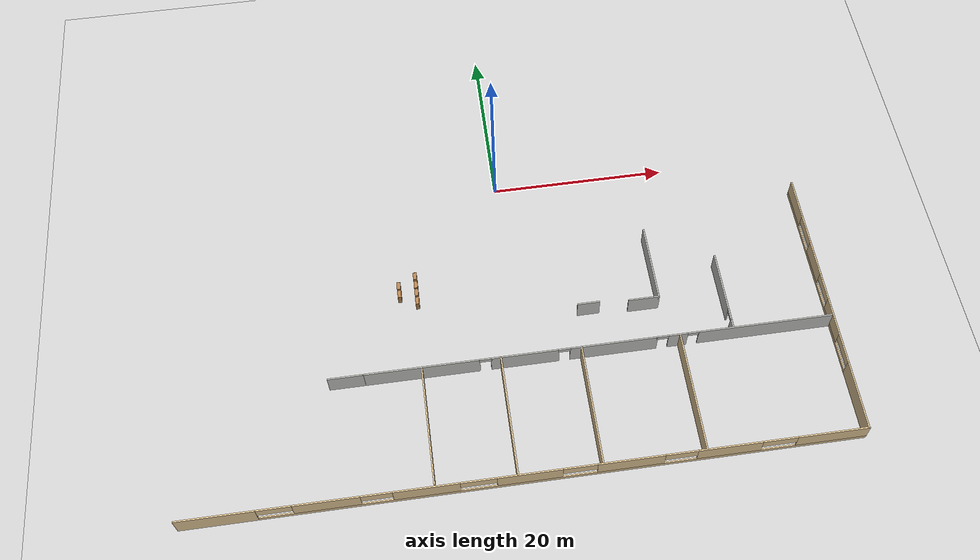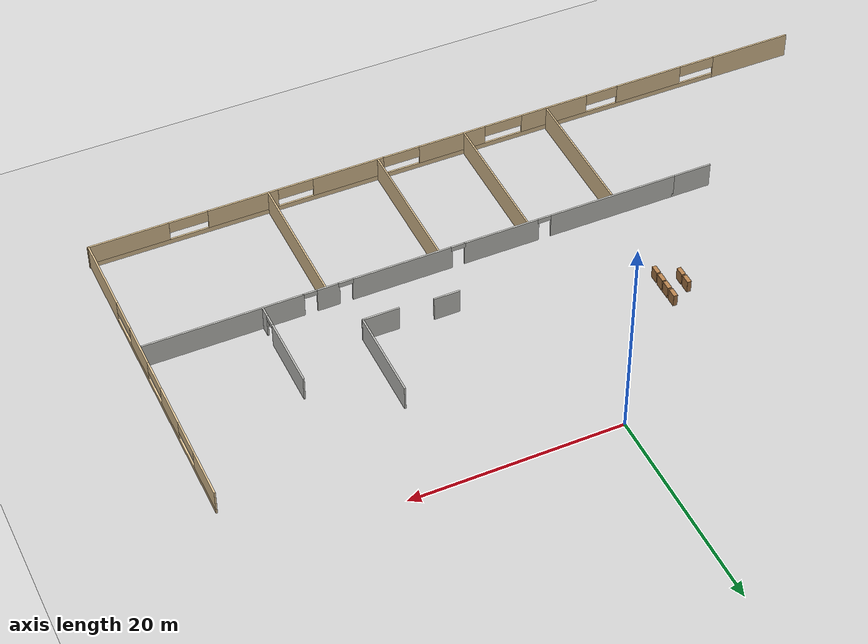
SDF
<sdf version="1.7">
 <world name="default">
  <model name="ground_plane">
   <static>1</static>
   <link name="link">
    <collision name="collision">
     <geometry><plane><normal>0 0 1</normal><size>100 100</size></plane></geometry>
     <surface>
      <contact><collide_bitmask>65535</collide_bitmask></contact>
      <friction><ode><mu>100</mu><mu2>50</mu2></ode></friction>
     </surface>
    </collision>
    <visual name="visual">
     <cast_shadows>0</cast_shadows>
     <geometry><plane><normal>0 0 1</normal><size>100 100</size></plane></geometry>
     <material>
      <script><uri>file://media/materials/scripts/gazebo.material</uri><name>Gazebo/Grey</name></script>
     </material>
    </visual>
   </link>
  </model>
  <model name="Building">
   <pose>0.746899 -1.50406 0 0 -0 1.57073</pose>
   <link name="Wall_10">
    <pose>-19.5795 -33.75 0 0 -0 0</pose>
    <visual name="Wall_10_Visual_0">
     <pose>-11.9192 0 1.25 0 -0 0</pose>
     <geometry><box><size>7.66158 0.15 2.5</size></box></geometry>
     <material>
      <script><uri>file://media/materials/scripts/gazebo.material</uri><name>Gazebo/Grey</name></script>
      <ambient>0.921569 0.807843 0.615686 1</ambient>
     </material>
     <meta><layer>0</layer></meta>
    </visual>
    <collision name="Wall_10_Collision_0">
     <geometry><box><size>7.66158 0.15 2.5</size></box></geometry>
     <pose>-11.9192 0 1.25 0 -0 0</pose>
    </collision>
    <visual name="Wall_10_Visual_1">
     <pose>3.83079 0 0.25 0 -0 0</pose>
     <geometry><box><size>23.8384 0.15 0.5</size></box></geometry>
     <material>
      <script><uri>file://media/materials/scripts/gazebo.material</uri><name>Gazebo/Grey</name></script>
      <ambient>0.921569 0.807843 0.615686 1</ambient>
     </material>
     <meta><layer>0</layer></meta>
    </visual>
    <collision name="Wall_10_Collision_1">
     <geometry><box><size>23.8384 0.15 0.5</size></box></geometry>
     <pose>3.83079 0 0.25 0 -0 0</pose>
    </collision>
    <visual name="Wall_10_Visual_2">
     <pose>-2.41376 0 1.5 0 -0 0</pose>
     <geometry><box><size>4.46303 0.15 2</size></box></geometry>
     <material>
      <script><uri>file://media/materials/scripts/gazebo.material</uri><name>Gazebo/Grey</name></script>
      <ambient>0.921569 0.807843 0.615686 1</ambient>
     </material>
     <meta><layer>0</layer></meta>
    </visual>
    <collision name="Wall_10_Collision_2">
     <geometry><box><size>4.46303 0.15 2</size></box></geometry>
     <pose>-2.41376 0 1.5 0 -0 0</pose>
    </collision>
    <visual name="Wall_10_Visual_3">
     <pose>5.19728 0 1.5 0 -0 0</pose>
     <geometry><box><size>4.24144 0.15 2</size></box></geometry>
     <material>
      <script><uri>file://media/materials/scripts/gazebo.material</uri><name>Gazebo/Grey</name></script>
      <ambient>0.921569 0.807843 0.615686 1</ambient>
     </material>
     <meta><layer>0</layer></meta>
    </visual>
    <collision name="Wall_10_Collision_3">
     <geometry><box><size>4.24144 0.15 2</size></box></geometry>
     <pose>5.19728 0 1.5 0 -0 0</pose>
    </collision>
    <visual name="Wall_10_Visual_4">
     <pose>13.3049 0 1.5 0 -0 0</pose>
     <geometry><box><size>4.89016 0.15 2</size></box></geometry>
     <material>
      <script><uri>file://media/materials/scripts/gazebo.material</uri><name>Gazebo/Grey</name></script>
      <ambient>0.921569 0.807843 0.615686 1</ambient>
     </material>
     <meta><layer>0</layer></meta>
    </visual>
    <collision name="Wall_10_Collision_4">
     <geometry><box><size>4.89016 0.15 2</size></box></geometry>
     <pose>13.3049 0 1.5 0 -0 0</pose>
    </collision>
    <visual name="Wall_10_Visual_5">
     <pose>-6.36685 0 1.9 0 -0 0</pose>
     <geometry><box><size>3.44314 0.15 1.2</size></box></geometry>
     <material>
      <script><uri>file://media/materials/scripts/gazebo.material</uri><name>Gazebo/Grey</name></script>
      <ambient>0.921569 0.807843 0.615686 1</ambient>
     </material>
     <meta><layer>0</layer></meta>
    </visual>
    <collision name="Wall_10_Collision_5">
     <geometry><box><size>3.44314 0.15 1.2</size></box></geometry>
     <pose>-6.36685 0 1.9 0 -0 0</pose>
    </collision>
    <visual name="Wall_10_Visual_6">
     <pose>1.44716 0 1.9 0 -0 0</pose>
     <geometry><box><size>3.25881 0.15 1.2</size></box></geometry>
     <material>
      <script><uri>file://media/materials/scripts/gazebo.material</uri><name>Gazebo/Grey</name></script>
      <ambient>0.921569 0.807843 0.615686 1</ambient>
     </material>
     <meta><layer>0</layer></meta>
    </visual>
    <collision name="Wall_10_Collision_6">
     <geometry><box><size>3.25881 0.15 1.2</size></box></geometry>
     <pose>1.44716 0 1.9 0 -0 0</pose>
    </collision>
    <visual name="Wall_10_Visual_7">
     <pose>9.08892 0 1.9 0 -0 0</pose>
     <geometry><box><size>3.54184 0.15 1.2</size></box></geometry>
     <material>
      <script><uri>file://media/materials/scripts/gazebo.material</uri><name>Gazebo/Grey</name></script>
      <ambient>0.921569 0.807843 0.615686 1</ambient>
     </material>
     <meta><layer>0</layer></meta>
    </visual>
    <collision name="Wall_10_Collision_7">
     <geometry><box><size>3.54184 0.15 1.2</size></box></geometry>
     <pose>9.08892 0 1.9 0 -0 0</pose>
    </collision>
   </link>
   <link name="Wall_2">
    <pose>-35.329 1.98049 0 0 0 -1.5708</pose>
    <visual name="Wall_2_Visual_0">
     <pose>-31.7867 0 1.25 0 -0 0</pose>
     <geometry><box><size>8.1767 0.15 2.5</size></box></geometry>
     <material>
      <script><uri>file://media/materials/scripts/gazebo.material</uri><name>Gazebo/Grey</name></script>
      <ambient>0.921569 0.807843 0.615686 1</ambient>
     </material>
     <meta><layer>0</layer></meta>
    </visual>
    <collision name="Wall_2_Collision_0">
     <geometry><box><size>8.1767 0.15 2.5</size></box></geometry>
     <pose>-31.7867 0 1.25 0 -0 0</pose>
    </collision>
    <visual name="Wall_2_Visual_1">
     <pose>4.08835 0 0.25 0 -0 0</pose>
     <geometry><box><size>63.5733 0.15 0.5</size></box></geometry>
     <material>
      <script><uri>file://media/materials/scripts/gazebo.material</uri><name>Gazebo/Grey</name></script>
      <ambient>0.921569 0.807843 0.615686 1</ambient>
     </material>
     <meta><layer>0</layer></meta>
    </visual>
    <collision name="Wall_2_Collision_1">
     <geometry><box><size>63.5733 0.15 0.5</size></box></geometry>
     <pose>4.08835 0 0.25 0 -0 0</pose>
    </collision>
    <visual name="Wall_2_Visual_2">
     <pose>-20.6272 0 1.5 0 -0 0</pose>
     <geometry><box><size>6.88516 0.15 2</size></box></geometry>
     <material>
      <script><uri>file://media/materials/scripts/gazebo.material</uri><name>Gazebo/Grey</name></script>
      <ambient>0.921569 0.807843 0.615686 1</ambient>
     </material>
     <meta><layer>0</layer></meta>
    </visual>
    <collision name="Wall_2_Collision_2">
     <geometry><box><size>6.88516 0.15 2</size></box></geometry>
     <pose>-20.6272 0 1.5 0 -0 0</pose>
    </collision>
    <visual name="Wall_2_Visual_3">
     <pose>-10.487 0 1.5 0 -0 0</pose>
     <geometry><box><size>6.88516 0.15 2</size></box></geometry>
     <material>
      <script><uri>file://media/materials/scripts/gazebo.material</uri><name>Gazebo/Grey</name></script>
      <ambient>0.921569 0.807843 0.615686 1</ambient>
     </material>
     <meta><layer>0</layer></meta>
    </visual>
    <collision name="Wall_2_Collision_3">
     <geometry><box><size>6.88516 0.15 2</size></box></geometry>
     <pose>-10.487 0 1.5 0 -0 0</pose>
    </collision>
    <visual name="Wall_2_Visual_4">
     <pose>0.140779 0 1.5 0 -0 0</pose>
     <geometry><box><size>6.7931 0.15 2</size></box></geometry>
     <material>
      <script><uri>file://media/materials/scripts/gazebo.material</uri><name>Gazebo/Grey</name></script>
      <ambient>0.921569 0.807843 0.615686 1</ambient>
     </material>
     <meta><layer>0</layer></meta>
    </visual>
    <collision name="Wall_2_Collision_4">
     <geometry><box><size>6.7931 0.15 2</size></box></geometry>
     <pose>0.140779 0 1.5 0 -0 0</pose>
    </collision>
    <visual name="Wall_2_Visual_5">
     <pose>10.6748 0 1.5 0 -0 0</pose>
     <geometry><box><size>7.0604 0.15 2</size></box></geometry>
     <material>
      <script><uri>file://media/materials/scripts/gazebo.material</uri><name>Gazebo/Grey</name></script>
      <ambient>0.921569 0.807843 0.615686 1</ambient>
     </material>
     <meta><layer>0</layer></meta>
    </visual>
    <collision name="Wall_2_Collision_5">
     <geometry><box><size>7.0604 0.15 2</size></box></geometry>
     <pose>10.6748 0 1.5 0 -0 0</pose>
    </collision>
    <visual name="Wall_2_Visual_6">
     <pose>21.0585 0 1.5 0 -0 0</pose>
     <geometry><box><size>6.84339 0.15 2</size></box></geometry>
     <material>
      <script><uri>file://media/materials/scripts/gazebo.material</uri><name>Gazebo/Grey</name></script>
      <ambient>0.921569 0.807843 0.615686 1</ambient>
     </material>
     <meta><layer>0</layer></meta>
    </visual>
    <collision name="Wall_2_Collision_6">
     <geometry><box><size>6.84339 0.15 2</size></box></geometry>
     <pose>21.0585 0 1.5 0 -0 0</pose>
    </collision>
    <visual name="Wall_2_Visual_7">
     <pose>32.0339 0 1.5 0 -0 0</pose>
     <geometry><box><size>7.68221 0.15 2</size></box></geometry>
     <material>
      <script><uri>file://media/materials/scripts/gazebo.material</uri><name>Gazebo/Grey</name></script>
      <ambient>0.921569 0.807843 0.615686 1</ambient>
     </material>
     <meta><layer>0</layer></meta>
    </visual>
    <collision name="Wall_2_Collision_7">
     <geometry><box><size>7.68221 0.15 2</size></box></geometry>
     <pose>32.0339 0 1.5 0 -0 0</pose>
    </collision>
    <visual name="Wall_2_Visual_8">
     <pose>-25.884 0 1.9 0 -0 0</pose>
     <geometry><box><size>3.62857 0.15 1.2</size></box></geometry>
     <material>
      <script><uri>file://media/materials/scripts/gazebo.material</uri><name>Gazebo/Grey</name></script>
      <ambient>0.921569 0.807843 0.615686 1</ambient>
     </material>
     <meta><layer>0</layer></meta>
    </visual>
    <collision name="Wall_2_Collision_8">
     <geometry><box><size>3.62857 0.15 1.2</size></box></geometry>
     <pose>-25.884 0 1.9 0 -0 0</pose>
    </collision>
    <visual name="Wall_2_Visual_9">
     <pose>-15.5571 0 1.9 0 -0 0</pose>
     <geometry><box><size>3.25498 0.15 1.2</size></box></geometry>
     <material>
      <script><uri>file://media/materials/scripts/gazebo.material</uri><name>Gazebo/Grey</name></script>
      <ambient>0.921569 0.807843 0.615686 1</ambient>
     </material>
     <meta><layer>0</layer></meta>
    </visual>
    <collision name="Wall_2_Collision_9">
     <geometry><box><size>3.25498 0.15 1.2</size></box></geometry>
     <pose>-15.5571 0 1.9 0 -0 0</pose>
    </collision>
    <visual name="Wall_2_Visual_10">
     <pose>-5.15011 0 1.9 0 -0 0</pose>
     <geometry><box><size>3.78867 0.15 1.2</size></box></geometry>
     <material>
      <script><uri>file://media/materials/scripts/gazebo.material</uri><name>Gazebo/Grey</name></script>
      <ambient>0.921569 0.807843 0.615686 1</ambient>
     </material>
     <meta><layer>0</layer></meta>
    </visual>
    <collision name="Wall_2_Collision_10">
     <geometry><box><size>3.78867 0.15 1.2</size></box></geometry>
     <pose>-5.15011 0 1.9 0 -0 0</pose>
    </collision>
    <visual name="Wall_2_Visual_11">
     <pose>5.34097 0 1.9 0 -0 0</pose>
     <geometry><box><size>3.60729 0.15 1.2</size></box></geometry>
     <material>
      <script><uri>file://media/materials/scripts/gazebo.material</uri><name>Gazebo/Grey</name></script>
      <ambient>0.921569 0.807843 0.615686 1</ambient>
     </material>
     <meta><layer>0</layer></meta>
    </visual>
    <collision name="Wall_2_Collision_11">
     <geometry><box><size>3.60729 0.15 1.2</size></box></geometry>
     <pose>5.34097 0 1.9 0 -0 0</pose>
    </collision>
    <visual name="Wall_2_Visual_12">
     <pose>15.9209 0 1.9 0 -0 0</pose>
     <geometry><box><size>3.43183 0.15 1.2</size></box></geometry>
     <material>
      <script><uri>file://media/materials/scripts/gazebo.material</uri><name>Gazebo/Grey</name></script>
      <ambient>0.921569 0.807843 0.615686 1</ambient>
     </material>
     <meta><layer>0</layer></meta>
    </visual>
    <collision name="Wall_2_Collision_12">
     <geometry><box><size>3.43183 0.15 1.2</size></box></geometry>
     <pose>15.9209 0 1.9 0 -0 0</pose>
    </collision>
    <visual name="Wall_2_Visual_13">
     <pose>26.3365 0 1.9 0 -0 0</pose>
     <geometry><box><size>3.71256 0.15 1.2</size></box></geometry>
     <material>
      <script><uri>file://media/materials/scripts/gazebo.material</uri><name>Gazebo/Grey</name></script>
      <ambient>0.921569 0.807843 0.615686 1</ambient>
     </material>
     <meta><layer>0</layer></meta>
    </visual>
    <collision name="Wall_2_Collision_13">
     <geometry><box><size>3.71256 0.15 1.2</size></box></geometry>
     <pose>26.3365 0 1.9 0 -0 0</pose>
    </collision>
   </link>
   <link name="Wall_48">
    <pose>-21.778 -6.62477 0 0 -0 1.5708</pose>
    <visual name="Wall_48_Visual_0">
     <pose>-19.5242 0 1.25 0 -0 0</pose>
     <geometry><box><size>15.0016 0.15 2.5</size></box></geometry>
     <material>
      <script><uri>file://media/materials/scripts/gazebo.material</uri><name>Gazebo/CeilingTiled</name></script>
      <ambient>1 1 1 1</ambient>
     </material>
     <meta><layer>0</layer></meta>
    </visual>
    <collision name="Wall_48_Collision_0">
     <geometry><box><size>15.0016 0.15 2.5</size></box></geometry>
     <pose>-19.5242 0 1.25 0 -0 0</pose>
    </collision>
    <visual name="Wall_48_Visual_1">
     <pose>-9.74757 0 1.25 0 -0 0</pose>
     <geometry><box><size>2.15165 0.15 2.5</size></box></geometry>
     <material>
      <script><uri>file://media/materials/scripts/gazebo.material</uri><name>Gazebo/CeilingTiled</name></script>
      <ambient>1 1 1 1</ambient>
     </material>
     <meta><layer>0</layer></meta>
    </visual>
    <collision name="Wall_48_Collision_1">
     <geometry><box><size>2.15165 0.15 2.5</size></box></geometry>
     <pose>-9.74757 0 1.25 0 -0 0</pose>
    </collision>
    <visual name="Wall_48_Visual_2">
     <pose>-2.65076 0 1.25 0 -0 0</pose>
     <geometry><box><size>9.64197 0.15 2.5</size></box></geometry>
     <material>
      <script><uri>file://media/materials/scripts/gazebo.material</uri><name>Gazebo/CeilingTiled</name></script>
      <ambient>1 1 1 1</ambient>
     </material>
     <meta><layer>0</layer></meta>
    </visual>
    <collision name="Wall_48_Collision_2">
     <geometry><box><size>9.64197 0.15 2.5</size></box></geometry>
     <pose>-2.65076 0 1.25 0 -0 0</pose>
    </collision>
    <visual name="Wall_48_Visual_3">
     <pose>7.07473 0 1.25 0 -0 0</pose>
     <geometry><box><size>7.40901 0.15 2.5</size></box></geometry>
     <material>
      <script><uri>file://media/materials/scripts/gazebo.material</uri><name>Gazebo/CeilingTiled</name></script>
      <ambient>1 1 1 1</ambient>
     </material>
     <meta><layer>0</layer></meta>
    </visual>
    <collision name="Wall_48_Collision_3">
     <geometry><box><size>7.40901 0.15 2.5</size></box></geometry>
     <pose>7.07473 0 1.25 0 -0 0</pose>
    </collision>
    <visual name="Wall_48_Visual_4">
     <pose>18.3068 0 1.25 0 -0 0</pose>
     <geometry><box><size>12.6551 0.15 2.5</size></box></geometry>
     <material>
      <script><uri>file://media/materials/scripts/gazebo.material</uri><name>Gazebo/CeilingTiled</name></script>
      <ambient>1 1 1 1</ambient>
     </material>
     <meta><layer>0</layer></meta>
    </visual>
    <collision name="Wall_48_Collision_4">
     <geometry><box><size>12.6551 0.15 2.5</size></box></geometry>
     <pose>18.3068 0 1.25 0 -0 0</pose>
    </collision>
    <visual name="Wall_48_Visual_5">
     <pose>26.4297 0 1.25 0 -0 0</pose>
     <geometry><box><size>3.89064 0.15 2.5</size></box></geometry>
     <material>
      <script><uri>file://media/materials/scripts/gazebo.material</uri><name>Gazebo/CeilingTiled</name></script>
      <ambient>1 1 1 1</ambient>
     </material>
     <meta><layer>0</layer></meta>
    </visual>
    <collision name="Wall_48_Collision_5">
     <geometry><box><size>3.89064 0.15 2.5</size></box></geometry>
     <pose>26.4297 0 1.25 0 -0 0</pose>
    </collision>
    <visual name="Wall_48_Visual_6">
     <pose>-11.4234 0 2.25 0 -0 0</pose>
     <geometry><box><size>1.4 0.15 0.5</size></box></geometry>
     <material>
      <script><uri>file://media/materials/scripts/gazebo.material</uri><name>Gazebo/CeilingTiled</name></script>
      <ambient>1 1 1 1</ambient>
     </material>
     <meta><layer>0</layer></meta>
    </visual>
    <collision name="Wall_48_Collision_6">
     <geometry><box><size>1.4 0.15 0.5</size></box></geometry>
     <pose>-11.4234 0 2.25 0 -0 0</pose>
    </collision>
    <visual name="Wall_48_Visual_7">
     <pose>-8.07175 0 2.25 0 -0 0</pose>
     <geometry><box><size>1.4 0.15 0.5</size></box></geometry>
     <material>
      <script><uri>file://media/materials/scripts/gazebo.material</uri><name>Gazebo/CeilingTiled</name></script>
      <ambient>1 1 1 1</ambient>
     </material>
     <meta><layer>0</layer></meta>
    </visual>
    <collision name="Wall_48_Collision_7">
     <geometry><box><size>1.4 0.15 0.5</size></box></geometry>
     <pose>-8.07175 0 2.25 0 -0 0</pose>
    </collision>
    <visual name="Wall_48_Visual_8">
     <pose>2.77022 0 2.25 0 -0 0</pose>
     <geometry><box><size>1.4 0.15 0.5</size></box></geometry>
     <material>
      <script><uri>file://media/materials/scripts/gazebo.material</uri><name>Gazebo/CeilingTiled</name></script>
      <ambient>1 1 1 1</ambient>
     </material>
     <meta><layer>0</layer></meta>
    </visual>
    <collision name="Wall_48_Collision_8">
     <geometry><box><size>1.4 0.15 0.5</size></box></geometry>
     <pose>2.77022 0 2.25 0 -0 0</pose>
    </collision>
    <visual name="Wall_48_Visual_9">
     <pose>11.3792 0 2.25 0 -0 0</pose>
     <geometry><box><size>1.4 0.15 0.5</size></box></geometry>
     <material>
      <script><uri>file://media/materials/scripts/gazebo.material</uri><name>Gazebo/CeilingTiled</name></script>
      <ambient>1 1 1 1</ambient>
     </material>
     <meta><layer>0</layer></meta>
    </visual>
    <collision name="Wall_48_Collision_9">
     <geometry><box><size>1.4 0.15 0.5</size></box></geometry>
     <pose>11.3792 0 2.25 0 -0 0</pose>
    </collision>
   </link>
   <link name="Wall_52">
    <collision name="Wall_52_Collision">
     <geometry><box><size>13.5 0.15 2.5</size></box></geometry>
     <pose>0 0 1.25 0 -0 0</pose>
    </collision>
    <visual name="Wall_52_Visual">
     <pose>0 0 1.25 0 -0 0</pose>
     <geometry><box><size>13.5 0.15 2.5</size></box></geometry>
     <material>
      <script><uri>file://media/materials/scripts/gazebo.material</uri><name>Gazebo/Grey</name></script>
      <ambient>0.921569 0.807843 0.615686 1</ambient>
     </material>
     <meta><layer>0</layer></meta>
    </visual>
    <pose>-28.5455 3.06639 0 0 -0 0</pose>
   </link>
   <link name="Wall_56">
    <collision name="Wall_56_Collision">
     <geometry><box><size>13.5 0.15 2.5</size></box></geometry>
     <pose>0 0 1.25 0 -0 0</pose>
    </collision>
    <visual name="Wall_56_Visual">
     <pose>0 0 1.25 0 -0 0</pose>
     <geometry><box><size>13.5 0.15 2.5</size></box></geometry>
     <material>
      <script><uri>file://media/materials/scripts/gazebo.material</uri><name>Gazebo/Grey</name></script>
      <ambient>0.921569 0.807843 0.615686 1</ambient>
     </material>
     <meta><layer>0</layer></meta>
    </visual>
    <pose>-28.5496 -5.72467 0 0 -0 0</pose>
   </link>
   <link name="Wall_58">
    <collision name="Wall_58_Collision">
     <geometry><box><size>13.5 0.15 2.5</size></box></geometry>
     <pose>0 0 1.25 0 -0 0</pose>
    </collision>
    <visual name="Wall_58_Visual">
     <pose>0 0 1.25 0 -0 0</pose>
     <geometry><box><size>13.5 0.15 2.5</size></box></geometry>
     <material>
      <script><uri>file://media/materials/scripts/gazebo.material</uri><name>Gazebo/Grey</name></script>
      <ambient>0.921569 0.807843 0.615686 1</ambient>
     </material>
     <meta><layer>0</layer></meta>
    </visual>
    <pose>-28.5707 -16.5913 0 0 -0 0</pose>
   </link>
   <link name="Wall_60">
    <pose>-17.0925 -22.5155 0 0 -0 0</pose>
    <visual name="Wall_60_Visual_0">
     <pose>-4.12823 0 1.25 0 -0 0</pose>
     <geometry><box><size>1.04353 0.15 2.5</size></box></geometry>
     <material>
      <script><uri>file://media/materials/scripts/gazebo.material</uri><name>Gazebo/CeilingTiled</name></script>
      <ambient>1 1 1 1</ambient>
     </material>
     <meta><layer>0</layer></meta>
    </visual>
    <collision name="Wall_60_Collision_0">
     <geometry><box><size>1.04353 0.15 2.5</size></box></geometry>
     <pose>-4.12823 0 1.25 0 -0 0</pose>
    </collision>
    <visual name="Wall_60_Visual_1">
     <pose>1.12177 0 1.25 0 -0 0</pose>
     <geometry><box><size>7.05647 0.15 2.5</size></box></geometry>
     <material>
      <script><uri>file://media/materials/scripts/gazebo.material</uri><name>Gazebo/CeilingTiled</name></script>
      <ambient>1 1 1 1</ambient>
     </material>
     <meta><layer>0</layer></meta>
    </visual>
    <collision name="Wall_60_Collision_1">
     <geometry><box><size>7.05647 0.15 2.5</size></box></geometry>
     <pose>1.12177 0 1.25 0 -0 0</pose>
    </collision>
    <visual name="Wall_60_Visual_2">
     <pose>-3.00647 0 2.25 0 -0 0</pose>
     <geometry><box><size>1.4 0.15 0.5</size></box></geometry>
     <material>
      <script><uri>file://media/materials/scripts/gazebo.material</uri><name>Gazebo/CeilingTiled</name></script>
      <ambient>1 1 1 1</ambient>
     </material>
     <meta><layer>0</layer></meta>
    </visual>
    <collision name="Wall_60_Collision_2">
     <geometry><box><size>1.4 0.15 0.5</size></box></geometry>
     <pose>-3.00647 0 2.25 0 -0 0</pose>
    </collision>
   </link>
   <link name="Wall_7">
    <collision name="Wall_7_Collision">
     <geometry><box><size>13.25 0.15 2.5</size></box></geometry>
     <pose>0 0 1.25 0 -0 0</pose>
    </collision>
    <visual name="Wall_7_Visual">
     <pose>0 0 1.25 0 -0 0</pose>
     <geometry><box><size>13.25 0.15 2.5</size></box></geometry>
     <material>
      <script><uri>file://media/materials/scripts/gazebo.material</uri><name>Gazebo/Grey</name></script>
      <ambient>0.921569 0.807843 0.615686 1</ambient>
     </material>
     <meta><layer>0</layer></meta>
    </visual>
    <pose>-28.5436 11.6262 0 0 -0 0</pose>
   </link>
   <link name="Wall_91">
    <collision name="Wall_91_Collision">
     <geometry><box><size>2.5 0.15 2.5</size></box></geometry>
     <pose>0 0 1.25 0 -0 0</pose>
    </collision>
    <visual name="Wall_91_Visual">
     <pose>0 0 1.25 0 -0 0</pose>
     <geometry><box><size>2.5 0.15 2.5</size></box></geometry>
     <material>
      <script><uri>file://media/materials/scripts/gazebo.material</uri><name>Gazebo/CeilingTiled</name></script>
      <ambient>1 1 1 1</ambient>
     </material>
     <meta><layer>0</layer></meta>
    </visual>
    <pose>-16.497 -7.3876 0 0 0 -1.5708</pose>
   </link>
   <link name="Wall_93">
    <collision name="Wall_93_Collision">
     <geometry><box><size>3.5 0.15 2.5</size></box></geometry>
     <pose>0 0 1.25 0 -0 0</pose>
    </collision>
    <visual name="Wall_93_Visual">
     <pose>0 0 1.25 0 -0 0</pose>
     <geometry><box><size>3.5 0.15 2.5</size></box></geometry>
     <material>
      <script><uri>file://media/materials/scripts/gazebo.material</uri><name>Gazebo/CeilingTiled</name></script>
      <ambient>1 1 1 1</ambient>
     </material>
     <meta><layer>0</layer></meta>
    </visual>
    <pose>-16.7851 -13.5579 0 0 0 -1.5708</pose>
   </link>
   <link name="Wall_94">
    <collision name="Wall_94_Collision">
     <geometry><box><size>9 0.15 2.5</size></box></geometry>
     <pose>0 0 1.25 0 -0 0</pose>
    </collision>
    <visual name="Wall_94_Visual">
     <pose>0 0 1.25 0 -0 0</pose>
     <geometry><box><size>9 0.15 2.5</size></box></geometry>
     <material>
      <script><uri>file://media/materials/scripts/gazebo.material</uri><name>Gazebo/CeilingTiled</name></script>
      <ambient>1 1 1 1</ambient>
     </material>
     <meta><layer>0</layer></meta>
    </visual>
    <pose>-12.3601 -15.2329 0 0 -0 0</pose>
   </link>
   <static>1</static>
  </model>
  <model name="bookshelf_clone_1_clone_clone_clone_13_clone">
   <static>1</static>
   <link name="link">
    <inertial><mass>1</mass></inertial>
    <collision name="back">
     <pose>0 0.005 0.6 0 -0 0</pose>
     <geometry><box><size>0.9 0.01 1.2</size></box></geometry>
    </collision>
    <visual name="visual1">
     <pose>0 0.005 0.6 0 -0 0</pose>
     <geometry><box><size>0.9 0.01 1.2</size></box></geometry>
     <material>
      <script><uri>file://media/materials/scripts/gazebo.material</uri><name>Gazebo/Wood</name></script>
     </material>
    </visual>
    <collision name="left_side">
     <pose>0.45 -0.195 0.6 0 -0 0</pose>
     <geometry><box><size>0.02 0.4 1.2</size></box></geometry>
    </collision>
    <visual name="visual2">
     <pose>0.45 -0.195 0.6 0 -0 0</pose>
     <geometry><box><size>0.02 0.4 1.2</size></box></geometry>
     <material>
      <script><uri>file://media/materials/scripts/gazebo.material</uri><name>Gazebo/Wood</name></script>
     </material>
    </visual>
    <collision name="right_side">
     <pose>-0.45 -0.195 0.6 0 -0 0</pose>
     <geometry><box><size>0.02 0.4 1.2</size></box></geometry>
    </collision>
    <visual name="visual3">
     <pose>-0.45 -0.195 0.6 0 -0 0</pose>
     <geometry><box><size>0.02 0.4 1.2</size></box></geometry>
     <material>
      <script><uri>file://media/materials/scripts/gazebo.material</uri><name>Gazebo/Wood</name></script>
     </material>
    </visual>
    <collision name="bottom">
     <pose>0 -0.195 0.03 0 -0 0</pose>
     <geometry><box><size>0.88 0.4 0.06</size></box></geometry>
    </collision>
    <visual name="visual4">
     <pose>0 -0.195 0.03 0 -0 0</pose>
     <geometry><box><size>0.88 0.4 0.06</size></box></geometry>
     <material>
      <script><uri>file://media/materials/scripts/gazebo.material</uri><name>Gazebo/Wood</name></script>
     </material>
    </visual>
    <collision name="top">
     <pose>0 -0.195 1.19 0 -0 0</pose>
     <geometry><box><size>0.88 0.4 0.02</size></box></geometry>
    </collision>
    <visual name="visual5">
     <pose>0 -0.195 1.19 0 -0 0</pose>
     <geometry><box><size>0.88 0.4 0.02</size></box></geometry>
     <material>
      <script><uri>file://media/materials/scripts/gazebo.material</uri><name>Gazebo/Wood</name></script>
     </material>
    </visual>
    <collision name="low_shelf">
     <pose>0 -0.195 0.43 0 -0 0</pose>
     <geometry><box><size>0.88 0.4 0.02</size></box></geometry>
    </collision>
    <visual name="visual6">
     <pose>0 -0.195 0.43 0 -0 0</pose>
     <geometry><box><size>0.88 0.4 0.02</size></box></geometry>
     <material>
      <script><uri>file://media/materials/scripts/gazebo.material</uri><name>Gazebo/Wood</name></script>
     </material>
    </visual>
    <collision name="high_shelf">
     <pose>0 -0.195 0.8 0 -0 0</pose>
     <geometry><box><size>0.88 0.4 0.02</size></box></geometry>
    </collision>
    <visual name="visual7">
     <pose>0 -0.195 0.8 0 -0 0</pose>
     <geometry><box><size>0.88 0.4 0.02</size></box></geometry>
     <material>
      <script><uri>file://media/materials/scripts/gazebo.material</uri><name>Gazebo/Wood</name></script>
     </material>
    </visual>
   </link>
   <pose>-10.3958 -11.0634 0 0 0 -1.58278</pose>
  </model>
  <model name="bookshelf_clone_1_clone_clone_clone_13_clone_0">
   <static>1</static>
   <link name="link">
    <inertial><mass>1</mass></inertial>
    <collision name="back">
     <pose>0 0.005 0.6 0 -0 0</pose>
     <geometry><box><size>0.9 0.01 1.2</size></box></geometry>
    </collision>
    <visual name="visual1">
     <pose>0 0.005 0.6 0 -0 0</pose>
     <geometry><box><size>0.9 0.01 1.2</size></box></geometry>
     <material>
      <script><uri>file://media/materials/scripts/gazebo.material</uri><name>Gazebo/Wood</name></script>
     </material>
    </visual>
    <collision name="left_side">
     <pose>0.45 -0.195 0.6 0 -0 0</pose>
     <geometry><box><size>0.02 0.4 1.2</size></box></geometry>
    </collision>
    <visual name="visual2">
     <pose>0.45 -0.195 0.6 0 -0 0</pose>
     <geometry><box><size>0.02 0.4 1.2</size></box></geometry>
     <material>
      <script><uri>file://media/materials/scripts/gazebo.material</uri><name>Gazebo/Wood</name></script>
     </material>
    </visual>
    <collision name="right_side">
     <pose>-0.45 -0.195 0.6 0 -0 0</pose>
     <geometry><box><size>0.02 0.4 1.2</size></box></geometry>
    </collision>
    <visual name="visual3">
     <pose>-0.45 -0.195 0.6 0 -0 0</pose>
     <geometry><box><size>0.02 0.4 1.2</size></box></geometry>
     <material>
      <script><uri>file://media/materials/scripts/gazebo.material</uri><name>Gazebo/Wood</name></script>
     </material>
    </visual>
    <collision name="bottom">
     <pose>0 -0.195 0.03 0 -0 0</pose>
     <geometry><box><size>0.88 0.4 0.06</size></box></geometry>
    </collision>
    <visual name="visual4">
     <pose>0 -0.195 0.03 0 -0 0</pose>
     <geometry><box><size>0.88 0.4 0.06</size></box></geometry>
     <material>
      <script><uri>file://media/materials/scripts/gazebo.material</uri><name>Gazebo/Wood</name></script>
     </material>
    </visual>
    <collision name="top">
     <pose>0 -0.195 1.19 0 -0 0</pose>
     <geometry><box><size>0.88 0.4 0.02</size></box></geometry>
    </collision>
    <visual name="visual5">
     <pose>0 -0.195 1.19 0 -0 0</pose>
     <geometry><box><size>0.88 0.4 0.02</size></box></geometry>
     <material>
      <script><uri>file://media/materials/scripts/gazebo.material</uri><name>Gazebo/Wood</name></script>
     </material>
    </visual>
    <collision name="low_shelf">
     <pose>0 -0.195 0.43 0 -0 0</pose>
     <geometry><box><size>0.88 0.4 0.02</size></box></geometry>
    </collision>
    <visual name="visual6">
     <pose>0 -0.195 0.43 0 -0 0</pose>
     <geometry><box><size>0.88 0.4 0.02</size></box></geometry>
     <material>
      <script><uri>file://media/materials/scripts/gazebo.material</uri><name>Gazebo/Wood</name></script>
     </material>
    </visual>
    <collision name="high_shelf">
     <pose>0 -0.195 0.8 0 -0 0</pose>
     <geometry><box><size>0.88 0.4 0.02</size></box></geometry>
    </collision>
    <visual name="visual7">
     <pose>0 -0.195 0.8 0 -0 0</pose>
     <geometry><box><size>0.88 0.4 0.02</size></box></geometry>
     <material>
      <script><uri>file://media/materials/scripts/gazebo.material</uri><name>Gazebo/Wood</name></script>
     </material>
    </visual>
   </link>
   <pose>-10.395 -12.1471 0 0 0 -1.58278</pose>
  </model>
  <model name="bookshelf_clone_1_clone_clone_clone_13_clone_1">
   <static>1</static>
   <link name="link">
    <inertial><mass>1</mass></inertial>
    <collision name="back">
     <pose>0 0.005 0.6 0 -0 0</pose>
     <geometry><box><size>0.9 0.01 1.2</size></box></geometry>
    </collision>
    <visual name="visual1">
     <pose>0 0.005 0.6 0 -0 0</pose>
     <geometry><box><size>0.9 0.01 1.2</size></box></geometry>
     <material>
      <script><uri>file://media/materials/scripts/gazebo.material</uri><name>Gazebo/Wood</name></script>
     </material>
    </visual>
    <collision name="left_side">
     <pose>0.45 -0.195 0.6 0 -0 0</pose>
     <geometry><box><size>0.02 0.4 1.2</size></box></geometry>
    </collision>
    <visual name="visual2">
     <pose>0.45 -0.195 0.6 0 -0 0</pose>
     <geometry><box><size>0.02 0.4 1.2</size></box></geometry>
     <material>
      <script><uri>file://media/materials/scripts/gazebo.material</uri><name>Gazebo/Wood</name></script>
     </material>
    </visual>
    <collision name="right_side">
     <pose>-0.45 -0.195 0.6 0 -0 0</pose>
     <geometry><box><size>0.02 0.4 1.2</size></box></geometry>
    </collision>
    <visual name="visual3">
     <pose>-0.45 -0.195 0.6 0 -0 0</pose>
     <geometry><box><size>0.02 0.4 1.2</size></box></geometry>
     <material>
      <script><uri>file://media/materials/scripts/gazebo.material</uri><name>Gazebo/Wood</name></script>
     </material>
    </visual>
    <collision name="bottom">
     <pose>0 -0.195 0.03 0 -0 0</pose>
     <geometry><box><size>0.88 0.4 0.06</size></box></geometry>
    </collision>
    <visual name="visual4">
     <pose>0 -0.195 0.03 0 -0 0</pose>
     <geometry><box><size>0.88 0.4 0.06</size></box></geometry>
     <material>
      <script><uri>file://media/materials/scripts/gazebo.material</uri><name>Gazebo/Wood</name></script>
     </material>
    </visual>
    <collision name="top">
     <pose>0 -0.195 1.19 0 -0 0</pose>
     <geometry><box><size>0.88 0.4 0.02</size></box></geometry>
    </collision>
    <visual name="visual5">
     <pose>0 -0.195 1.19 0 -0 0</pose>
     <geometry><box><size>0.88 0.4 0.02</size></box></geometry>
     <material>
      <script><uri>file://media/materials/scripts/gazebo.material</uri><name>Gazebo/Wood</name></script>
     </material>
    </visual>
    <collision name="low_shelf">
     <pose>0 -0.195 0.43 0 -0 0</pose>
     <geometry><box><size>0.88 0.4 0.02</size></box></geometry>
    </collision>
    <visual name="visual6">
     <pose>0 -0.195 0.43 0 -0 0</pose>
     <geometry><box><size>0.88 0.4 0.02</size></box></geometry>
     <material>
      <script><uri>file://media/materials/scripts/gazebo.material</uri><name>Gazebo/Wood</name></script>
     </material>
    </visual>
    <collision name="high_shelf">
     <pose>0 -0.195 0.8 0 -0 0</pose>
     <geometry><box><size>0.88 0.4 0.02</size></box></geometry>
    </collision>
    <visual name="visual7">
     <pose>0 -0.195 0.8 0 -0 0</pose>
     <geometry><box><size>0.88 0.4 0.02</size></box></geometry>
     <material>
      <script><uri>file://media/materials/scripts/gazebo.material</uri><name>Gazebo/Wood</name></script>
     </material>
    </visual>
   </link>
   <pose>-10.4035 -13.189 0 0 0 -1.58278</pose>
  </model>
  <model name="bookshelf_clone_1_clone_clone_clone_13_clone_2">
   <static>1</static>
   <link name="link">
    <inertial><mass>1</mass></inertial>
    <collision name="back">
     <pose>0 0.005 0.6 0 -0 0</pose>
     <geometry><box><size>0.9 0.01 1.2</size></box></geometry>
    </collision>
    <visual name="visual1">
     <pose>0 0.005 0.6 0 -0 0</pose>
     <geometry><box><size>0.9 0.01 1.2</size></box></geometry>
     <material>
      <script><uri>file://media/materials/scripts/gazebo.material</uri><name>Gazebo/Wood</name></script>
     </material>
    </visual>
    <collision name="left_side">
     <pose>0.45 -0.195 0.6 0 -0 0</pose>
     <geometry><box><size>0.02 0.4 1.2</size></box></geometry>
    </collision>
    <visual name="visual2">
     <pose>0.45 -0.195 0.6 0 -0 0</pose>
     <geometry><box><size>0.02 0.4 1.2</size></box></geometry>
     <material>
      <script><uri>file://media/materials/scripts/gazebo.material</uri><name>Gazebo/Wood</name></script>
     </material>
    </visual>
    <collision name="right_side">
     <pose>-0.45 -0.195 0.6 0 -0 0</pose>
     <geometry><box><size>0.02 0.4 1.2</size></box></geometry>
    </collision>
    <visual name="visual3">
     <pose>-0.45 -0.195 0.6 0 -0 0</pose>
     <geometry><box><size>0.02 0.4 1.2</size></box></geometry>
     <material>
      <script><uri>file://media/materials/scripts/gazebo.material</uri><name>Gazebo/Wood</name></script>
     </material>
    </visual>
    <collision name="bottom">
     <pose>0 -0.195 0.03 0 -0 0</pose>
     <geometry><box><size>0.88 0.4 0.06</size></box></geometry>
    </collision>
    <visual name="visual4">
     <pose>0 -0.195 0.03 0 -0 0</pose>
     <geometry><box><size>0.88 0.4 0.06</size></box></geometry>
     <material>
      <script><uri>file://media/materials/scripts/gazebo.material</uri><name>Gazebo/Wood</name></script>
     </material>
    </visual>
    <collision name="top">
     <pose>0 -0.195 1.19 0 -0 0</pose>
     <geometry><box><size>0.88 0.4 0.02</size></box></geometry>
    </collision>
    <visual name="visual5">
     <pose>0 -0.195 1.19 0 -0 0</pose>
     <geometry><box><size>0.88 0.4 0.02</size></box></geometry>
     <material>
      <script><uri>file://media/materials/scripts/gazebo.material</uri><name>Gazebo/Wood</name></script>
     </material>
    </visual>
    <collision name="low_shelf">
     <pose>0 -0.195 0.43 0 -0 0</pose>
     <geometry><box><size>0.88 0.4 0.02</size></box></geometry>
    </collision>
    <visual name="visual6">
     <pose>0 -0.195 0.43 0 -0 0</pose>
     <geometry><box><size>0.88 0.4 0.02</size></box></geometry>
     <material>
      <script><uri>file://media/materials/scripts/gazebo.material</uri><name>Gazebo/Wood</name></script>
     </material>
    </visual>
    <collision name="high_shelf">
     <pose>0 -0.195 0.8 0 -0 0</pose>
     <geometry><box><size>0.88 0.4 0.02</size></box></geometry>
    </collision>
    <visual name="visual7">
     <pose>0 -0.195 0.8 0 -0 0</pose>
     <geometry><box><size>0.88 0.4 0.02</size></box></geometry>
     <material>
      <script><uri>file://media/materials/scripts/gazebo.material</uri><name>Gazebo/Wood</name></script>
     </material>
    </visual>
   </link>
   <pose>-10.4211 -14.2491 0 0 0 -1.58278</pose>
  </model>
  <model name="bookshelf_clone_1_clone_clone_clone_13_clone_4_clone_0">
   <static>1</static>
   <link name="link">
    <inertial><mass>1</mass></inertial>
    <collision name="back">
     <pose>0 0.005 0.6 0 -0 0</pose>
     <geometry><box><size>0.9 0.01 1.2</size></box></geometry>
    </collision>
    <visual name="visual1">
     <pose>0 0.005 0.6 0 -0 0</pose>
     <geometry><box><size>0.9 0.01 1.2</size></box></geometry>
     <material>
      <script><uri>file://media/materials/scripts/gazebo.material</uri><name>Gazebo/Wood</name></script>
     </material>
    </visual>
    <collision name="left_side">
     <pose>0.45 -0.195 0.6 0 -0 0</pose>
     <geometry><box><size>0.02 0.4 1.2</size></box></geometry>
    </collision>
    <visual name="visual2">
     <pose>0.45 -0.195 0.6 0 -0 0</pose>
     <geometry><box><size>0.02 0.4 1.2</size></box></geometry>
     <material>
      <script><uri>file://media/materials/scripts/gazebo.material</uri><name>Gazebo/Wood</name></script>
     </material>
    </visual>
    <collision name="right_side">
     <pose>-0.45 -0.195 0.6 0 -0 0</pose>
     <geometry><box><size>0.02 0.4 1.2</size></box></geometry>
    </collision>
    <visual name="visual3">
     <pose>-0.45 -0.195 0.6 0 -0 0</pose>
     <geometry><box><size>0.02 0.4 1.2</size></box></geometry>
     <material>
      <script><uri>file://media/materials/scripts/gazebo.material</uri><name>Gazebo/Wood</name></script>
     </material>
    </visual>
    <collision name="bottom">
     <pose>0 -0.195 0.03 0 -0 0</pose>
     <geometry><box><size>0.88 0.4 0.06</size></box></geometry>
    </collision>
    <visual name="visual4">
     <pose>0 -0.195 0.03 0 -0 0</pose>
     <geometry><box><size>0.88 0.4 0.06</size></box></geometry>
     <material>
      <script><uri>file://media/materials/scripts/gazebo.material</uri><name>Gazebo/Wood</name></script>
     </material>
    </visual>
    <collision name="top">
     <pose>0 -0.195 1.19 0 -0 0</pose>
     <geometry><box><size>0.88 0.4 0.02</size></box></geometry>
    </collision>
    <visual name="visual5">
     <pose>0 -0.195 1.19 0 -0 0</pose>
     <geometry><box><size>0.88 0.4 0.02</size></box></geometry>
     <material>
      <script><uri>file://media/materials/scripts/gazebo.material</uri><name>Gazebo/Wood</name></script>
     </material>
    </visual>
    <collision name="low_shelf">
     <pose>0 -0.195 0.43 0 -0 0</pose>
     <geometry><box><size>0.88 0.4 0.02</size></box></geometry>
    </collision>
    <visual name="visual6">
     <pose>0 -0.195 0.43 0 -0 0</pose>
     <geometry><box><size>0.88 0.4 0.02</size></box></geometry>
     <material>
      <script><uri>file://media/materials/scripts/gazebo.material</uri><name>Gazebo/Wood</name></script>
     </material>
    </visual>
    <collision name="high_shelf">
     <pose>0 -0.195 0.8 0 -0 0</pose>
     <geometry><box><size>0.88 0.4 0.02</size></box></geometry>
    </collision>
    <visual name="visual7">
     <pose>0 -0.195 0.8 0 -0 0</pose>
     <geometry><box><size>0.88 0.4 0.02</size></box></geometry>
     <material>
      <script><uri>file://media/materials/scripts/gazebo.material</uri><name>Gazebo/Wood</name></script>
     </material>
    </visual>
   </link>
   <pose>-12.3281 -12.0815 0 0 0 -1.58278</pose>
  </model>
  <model name="bookshelf_clone_1_clone_clone_clone_13_clone_4_clone_1">
   <static>1</static>
   <link name="link">
    <inertial><mass>1</mass></inertial>
    <collision name="back">
     <pose>0 0.005 0.6 0 -0 0</pose>
     <geometry><box><size>0.9 0.01 1.2</size></box></geometry>
    </collision>
    <visual name="visual1">
     <pose>0 0.005 0.6 0 -0 0</pose>
     <geometry><box><size>0.9 0.01 1.2</size></box></geometry>
     <material>
      <script><uri>file://media/materials/scripts/gazebo.material</uri><name>Gazebo/Wood</name></script>
     </material>
    </visual>
    <collision name="left_side">
     <pose>0.45 -0.195 0.6 0 -0 0</pose>
     <geometry><box><size>0.02 0.4 1.2</size></box></geometry>
    </collision>
    <visual name="visual2">
     <pose>0.45 -0.195 0.6 0 -0 0</pose>
     <geometry><box><size>0.02 0.4 1.2</size></box></geometry>
     <material>
      <script><uri>file://media/materials/scripts/gazebo.material</uri><name>Gazebo/Wood</name></script>
     </material>
    </visual>
    <collision name="right_side">
     <pose>-0.45 -0.195 0.6 0 -0 0</pose>
     <geometry><box><size>0.02 0.4 1.2</size></box></geometry>
    </collision>
    <visual name="visual3">
     <pose>-0.45 -0.195 0.6 0 -0 0</pose>
     <geometry><box><size>0.02 0.4 1.2</size></box></geometry>
     <material>
      <script><uri>file://media/materials/scripts/gazebo.material</uri><name>Gazebo/Wood</name></script>
     </material>
    </visual>
    <collision name="bottom">
     <pose>0 -0.195 0.03 0 -0 0</pose>
     <geometry><box><size>0.88 0.4 0.06</size></box></geometry>
    </collision>
    <visual name="visual4">
     <pose>0 -0.195 0.03 0 -0 0</pose>
     <geometry><box><size>0.88 0.4 0.06</size></box></geometry>
     <material>
      <script><uri>file://media/materials/scripts/gazebo.material</uri><name>Gazebo/Wood</name></script>
     </material>
    </visual>
    <collision name="top">
     <pose>0 -0.195 1.19 0 -0 0</pose>
     <geometry><box><size>0.88 0.4 0.02</size></box></geometry>
    </collision>
    <visual name="visual5">
     <pose>0 -0.195 1.19 0 -0 0</pose>
     <geometry><box><size>0.88 0.4 0.02</size></box></geometry>
     <material>
      <script><uri>file://media/materials/scripts/gazebo.material</uri><name>Gazebo/Wood</name></script>
     </material>
    </visual>
    <collision name="low_shelf">
     <pose>0 -0.195 0.43 0 -0 0</pose>
     <geometry><box><size>0.88 0.4 0.02</size></box></geometry>
    </collision>
    <visual name="visual6">
     <pose>0 -0.195 0.43 0 -0 0</pose>
     <geometry><box><size>0.88 0.4 0.02</size></box></geometry>
     <material>
      <script><uri>file://media/materials/scripts/gazebo.material</uri><name>Gazebo/Wood</name></script>
     </material>
    </visual>
    <collision name="high_shelf">
     <pose>0 -0.195 0.8 0 -0 0</pose>
     <geometry><box><size>0.88 0.4 0.02</size></box></geometry>
    </collision>
    <visual name="visual7">
     <pose>0 -0.195 0.8 0 -0 0</pose>
     <geometry><box><size>0.88 0.4 0.02</size></box></geometry>
     <material>
      <script><uri>file://media/materials/scripts/gazebo.material</uri><name>Gazebo/Wood</name></script>
     </material>
    </visual>
   </link>
   <pose>-12.3273 -13.1422 0 0 0 -1.58278</pose>
  </model>
 </world>
</sdf>
